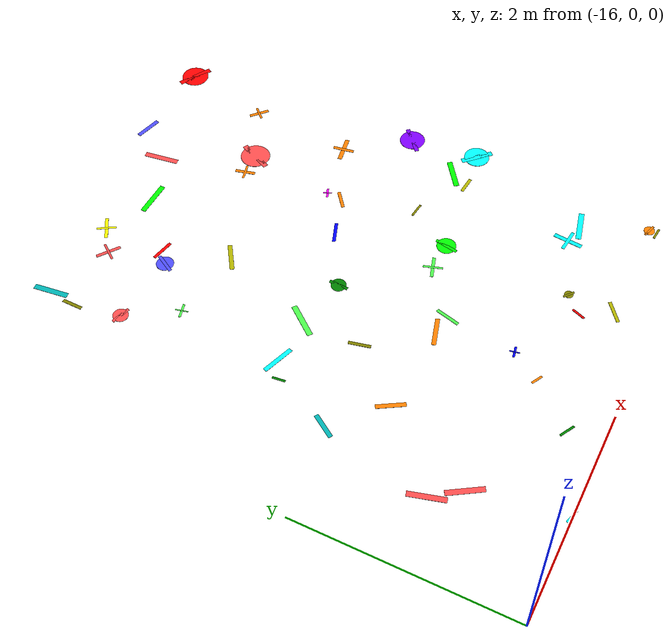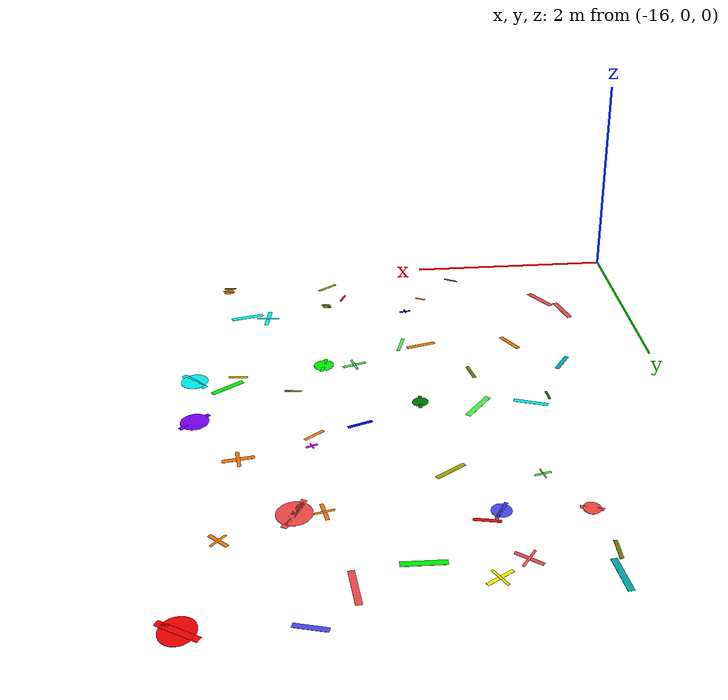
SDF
<sdf version="1.6">
 <world name="default">
  <model name="letter_P_54">
   <static>true</static>
   <pose>-15.02 0.01 0.010 0 0 2.868</pose>
   <link name="link">
    <visual name="visual">
     <geometry><box><size>0.13 0.02 0.002</size></box></geometry>
     <material>
      <ambient>0.0 1.0 1.0 1</ambient>
      <diffuse>0.0 1.0 1.0 1</diffuse>
      <specular>0.1 0.1 0.1 1</specular>
     </material>
    </visual>
   </link>
  </model>
  <model name="letter_K_55">
   <static>true</static>
   <pose>-15.18 0.84 0.009 0 0 2.133</pose>
   <link name="link">
    <visual name="visual">
     <geometry><box><size>0.33 0.05 0.002</size></box></geometry>
     <material>
      <ambient>1.0 0.3 0.3 1</ambient>
      <diffuse>1.0 0.3 0.3 1</diffuse>
      <specular>0.1 0.1 0.1 1</specular>
     </material>
    </visual>
   </link>
  </model>
  <model name="letter_Y_56">
   <static>true</static>
   <pose>-15.36 1.09 0.010 0 0 4.982</pose>
   <link name="link">
    <visual name="visual">
     <geometry><box><size>0.33 0.05 0.002</size></box></geometry>
     <material>
      <ambient>1.0 0.3 0.3 1</ambient>
      <diffuse>1.0 0.3 0.3 1</diffuse>
      <specular>0.1 0.1 0.1 1</specular>
     </material>
    </visual>
   </link>
  </model>
  <model name="letter_P_57">
   <static>true</static>
   <pose>-14.72 1.70 0.008 0 0 5.253</pose>
   <link name="link">
    <visual name="visual">
     <geometry><box><size>0.26 0.04 0.002</size></box></geometry>
     <material>
      <ambient>1.0 0.5 0.0 1</ambient>
      <diffuse>1.0 0.5 0.0 1</diffuse>
      <specular>0.1 0.1 0.1 1</specular>
     </material>
    </visual>
   </link>
  </model>
  <model name="letter_R_58">
   <static>true</static>
   <pose>-15.14 2.11 0.008 0 0 0.988</pose>
   <link name="link">
    <visual name="visual">
     <geometry><box><size>0.24 0.04 0.002</size></box></geometry>
     <material>
      <ambient>0.0 0.7 0.7 1</ambient>
      <diffuse>0.0 0.7 0.7 1</diffuse>
      <specular>0.1 0.1 0.1 1</specular>
     </material>
    </visual>
   </link>
  </model>
  <model name="letter_Z_59">
   <static>true</static>
   <pose>-14.73 2.75 0.011 0 0 2.807</pose>
   <link name="link">
    <visual name="visual">
     <geometry><box><size>0.30 0.04 0.002</size></box></geometry>
     <material>
      <ambient>0.0 1.0 1.0 1</ambient>
      <diffuse>0.0 1.0 1.0 1</diffuse>
      <specular>0.1 0.1 0.1 1</specular>
     </material>
    </visual>
   </link>
  </model>
  <model name="letter_X_60">
   <static>true</static>
   <pose>-14.90 2.65 0.011 0 0 1.676</pose>
   <link name="link">
    <visual name="visual">
     <geometry><box><size>0.12 0.02 0.002</size></box></geometry>
     <material>
      <ambient>0.0 0.5 0.0 1</ambient>
      <diffuse>0.0 0.5 0.0 1</diffuse>
      <specular>0.1 0.1 0.1 1</specular>
     </material>
    </visual>
   </link>
  </model>
  <model name="letter_O_61">
   <static>true</static>
   <pose>-14.92 4.20 0.012 0 0 2.859</pose>
   <link name="link">
    <visual name="visual">
     <geometry><box><size>0.18 0.03 0.002</size></box></geometry>
     <material>
      <ambient>1.0 0.3 0.3 1</ambient>
      <diffuse>1.0 0.3 0.3 1</diffuse>
      <specular>0.1 0.1 0.1 1</specular>
     </material>
    </visual>
    <visual name="visual2">
     <geometry><cylinder><radius>0.07</radius><length>0.002</length></cylinder></geometry>
     <material><ambient>1.0 0.3 0.3 1</ambient><diffuse>1.0 0.3 0.3 1</diffuse></material>
    </visual>
   </link>
  </model>
  <model name="letter_H_62">
   <static>true</static>
   <pose>-14.64 3.75 0.008 0 0 0.247</pose>
   <link name="link">
    <visual name="visual">
     <geometry><box><size>0.14 0.02 0.002</size></box></geometry>
     <material>
      <ambient>0.3 1.0 0.3 1</ambient>
      <diffuse>0.3 1.0 0.3 1</diffuse>
      <specular>0.1 0.1 0.1 1</specular>
     </material>
    </visual>
    <visual name="visual2">
     <pose>0 0 0.001 0 0 1.57</pose>
     <geometry><box><size>0.12 0.01 0.001</size></box></geometry>
     <material><ambient>0.3 1.0 0.3 1</ambient><diffuse>0.3 1.0 0.3 1</diffuse></material>
    </visual>
   </link>
  </model>
  <model name="letter_S_63">
   <static>true</static>
   <pose>-14.96 4.90 0.006 0 0 1.690</pose>
   <link name="link">
    <visual name="visual">
     <geometry><box><size>0.32 0.05 0.002</size></box></geometry>
     <material>
      <ambient>0.0 0.7 0.7 1</ambient>
      <diffuse>0.0 0.7 0.7 1</diffuse>
      <specular>0.1 0.1 0.1 1</specular>
     </material>
    </visual>
   </link>
  </model>
  <model name="letter_U_64">
   <static>true</static>
   <pose>-15.00 4.65 0.004 0 0 1.554</pose>
   <link name="link">
    <visual name="visual">
     <geometry><box><size>0.19 0.03 0.002</size></box></geometry>
     <material>
      <ambient>0.5 0.5 0.0 1</ambient>
      <diffuse>0.5 0.5 0.0 1</diffuse>
      <specular>0.1 0.1 0.1 1</specular>
     </material>
    </visual>
   </link>
  </model>
  <model name="letter_J_130">
   <static>true</static>
   <pose>-14.31 0.31 0.011 0 0 2.635</pose>
   <link name="link">
    <visual name="visual">
     <geometry><box><size>0.15 0.02 0.002</size></box></geometry>
     <material>
      <ambient>0.0 0.5 0.0 1</ambient>
      <diffuse>0.0 0.5 0.0 1</diffuse>
      <specular>0.1 0.1 0.1 1</specular>
     </material>
    </visual>
   </link>
  </model>
  <model name="letter_F_131">
   <static>true</static>
   <pose>-13.77 0.98 0.010 0 0 0.182</pose>
   <link name="link">
    <visual name="visual">
     <geometry><box><size>0.11 0.02 0.002</size></box></geometry>
     <material>
      <ambient>0.0 0.0 1.0 1</ambient>
      <diffuse>0.0 0.0 1.0 1</diffuse>
      <specular>0.1 0.1 0.1 1</specular>
     </material>
    </visual>
    <visual name="visual2">
     <pose>0 0 0.001 0 0 1.57</pose>
     <geometry><box><size>0.09 0.01 0.001</size></box></geometry>
     <material><ambient>0.0 0.0 1.0 1</ambient><diffuse>0.0 0.0 1.0 1</diffuse></material>
    </visual>
   </link>
  </model>
  <model name="letter_Y_132">
   <static>true</static>
   <pose>-13.95 0.71 0.007 0 0 2.653</pose>
   <link name="link">
    <visual name="visual">
     <geometry><box><size>0.11 0.02 0.002</size></box></geometry>
     <material>
      <ambient>1.0 0.5 0.0 1</ambient>
      <diffuse>1.0 0.5 0.0 1</diffuse>
      <specular>0.1 0.1 0.1 1</specular>
     </material>
    </visual>
   </link>
  </model>
  <model name="letter_S_133">
   <static>true</static>
   <pose>-13.87 1.67 0.006 0 0 0.287</pose>
   <link name="link">
    <visual name="visual">
     <geometry><box><size>0.28 0.04 0.002</size></box></geometry>
     <material>
      <ambient>1.0 0.5 0.0 1</ambient>
      <diffuse>1.0 0.5 0.0 1</diffuse>
      <specular>0.1 0.1 0.1 1</specular>
     </material>
    </visual>
   </link>
  </model>
  <model name="letter_Z_134">
   <static>true</static>
   <pose>-14.28 2.20 0.007 0 0 4.930</pose>
   <link name="link">
    <visual name="visual">
     <geometry><box><size>0.20 0.03 0.002</size></box></geometry>
     <material>
      <ambient>0.5 0.5 0.0 1</ambient>
      <diffuse>0.5 0.5 0.0 1</diffuse>
      <specular>0.1 0.1 0.1 1</specular>
     </material>
    </visual>
   </link>
  </model>
  <model name="letter_Z_135">
   <static>true</static>
   <pose>-13.68 1.64 0.006 0 0 1.307</pose>
   <link name="link">
    <visual name="visual">
     <geometry><box><size>0.23 0.03 0.002</size></box></geometry>
     <material>
      <ambient>0.3 1.0 0.3 1</ambient>
      <diffuse>0.3 1.0 0.3 1</diffuse>
      <specular>0.1 0.1 0.1 1</specular>
     </material>
    </visual>
   </link>
  </model>
  <model name="letter_W_136">
   <static>true</static>
   <pose>-14.27 2.76 0.004 0 0 4.040</pose>
   <link name="link">
    <visual name="visual">
     <geometry><box><size>0.34 0.05 0.002</size></box></geometry>
     <material>
      <ambient>0.3 1.0 0.3 1</ambient>
      <diffuse>0.3 1.0 0.3 1</diffuse>
      <specular>0.1 0.1 0.1 1</specular>
     </material>
    </visual>
   </link>
  </model>
  <model name="letter_C_137">
   <static>true</static>
   <pose>-13.78 2.65 0.004 0 0 1.509</pose>
   <link name="link">
    <visual name="visual">
     <geometry><box><size>0.18 0.03 0.002</size></box></geometry>
     <material>
      <ambient>0.0 0.5 0.0 1</ambient>
      <diffuse>0.0 0.5 0.0 1</diffuse>
      <specular>0.1 0.1 0.1 1</specular>
     </material>
    </visual>
    <visual name="visual2">
     <geometry><cylinder><radius>0.07</radius><length>0.002</length></cylinder></geometry>
     <material><ambient>0.0 0.5 0.0 1</ambient><diffuse>0.0 0.5 0.0 1</diffuse></material>
    </visual>
   </link>
  </model>
  <model name="letter_O_138">
   <static>true</static>
   <pose>-14.25 4.16 0.005 0 0 1.046</pose>
   <link name="link">
    <visual name="visual">
     <geometry><box><size>0.20 0.03 0.002</size></box></geometry>
     <material>
      <ambient>0.3 0.3 1.0 1</ambient>
      <diffuse>0.3 0.3 1.0 1</diffuse>
      <specular>0.1 0.1 0.1 1</specular>
     </material>
    </visual>
    <visual name="visual2">
     <geometry><cylinder><radius>0.08</radius><length>0.002</length></cylinder></geometry>
     <material><ambient>0.3 0.3 1.0 1</ambient><diffuse>0.3 0.3 1.0 1</diffuse></material>
    </visual>
   </link>
  </model>
  <model name="letter_V_139">
   <static>true</static>
   <pose>-13.93 3.66 0.012 0 0 3.728</pose>
   <link name="link">
    <visual name="visual">
     <geometry><box><size>0.28 0.04 0.002</size></box></geometry>
     <material>
      <ambient>0.7 0.7 0.0 1</ambient>
      <diffuse>0.7 0.7 0.0 1</diffuse>
      <specular>0.1 0.1 0.1 1</specular>
     </material>
    </visual>
   </link>
  </model>
  <model name="letter_Y_140">
   <static>true</static>
   <pose>-14.13 4.26 0.005 0 0 6.078</pose>
   <link name="link">
    <visual name="visual">
     <geometry><box><size>0.21 0.03 0.002</size></box></geometry>
     <material>
      <ambient>1.0 0.0 0.0 1</ambient>
      <diffuse>1.0 0.0 0.0 1</diffuse>
      <specular>0.1 0.1 0.1 1</specular>
     </material>
    </visual>
   </link>
  </model>
  <model name="letter_L_141">
   <static>true</static>
   <pose>-14.13 4.86 0.009 0 0 0.546</pose>
   <link name="link">
    <visual name="visual">
     <geometry><box><size>0.23 0.03 0.002</size></box></geometry>
     <material>
      <ambient>1.0 1.0 0.0 1</ambient>
      <diffuse>1.0 1.0 0.0 1</diffuse>
      <specular>0.1 0.1 0.1 1</specular>
     </material>
    </visual>
    <visual name="visual2">
     <pose>0 0 0.001 0 0 1.57</pose>
     <geometry><box><size>0.18 0.02 0.001</size></box></geometry>
     <material><ambient>1.0 1.0 0.0 1</ambient><diffuse>1.0 1.0 0.0 1</diffuse></material>
    </visual>
   </link>
  </model>
  <model name="letter_R_142">
   <static>true</static>
   <pose>-13.63 4.67 0.005 0 0 3.121</pose>
   <link name="link">
    <visual name="visual">
     <geometry><box><size>0.34 0.05 0.002</size></box></geometry>
     <material>
      <ambient>0.0 1.0 0.0 1</ambient>
      <diffuse>0.0 1.0 0.0 1</diffuse>
      <specular>0.1 0.1 0.1 1</specular>
     </material>
    </visual>
   </link>
  </model>
  <model name="letter_T_143">
   <static>true</static>
   <pose>-14.36 4.69 0.008 0 0 5.643</pose>
   <link name="link">
    <visual name="visual">
     <geometry><box><size>0.23 0.03 0.002</size></box></geometry>
     <material>
      <ambient>1.0 0.3 0.3 1</ambient>
      <diffuse>1.0 0.3 0.3 1</diffuse>
      <specular>0.1 0.1 0.1 1</specular>
     </material>
    </visual>
    <visual name="visual2">
     <pose>0 0 0.001 0 0 1.57</pose>
     <geometry><box><size>0.19 0.02 0.001</size></box></geometry>
     <material><ambient>1.0 0.3 0.3 1</ambient><diffuse>1.0 0.3 0.3 1</diffuse></material>
    </visual>
   </link>
  </model>
  <model name="letter_J_204">
   <static>true</static>
   <pose>-12.99 0.36 0.004 0 0 0.655</pose>
   <link name="link">
    <visual name="visual">
     <geometry><box><size>0.22 0.03 0.002</size></box></geometry>
     <material>
      <ambient>0.7 0.7 0.0 1</ambient>
      <diffuse>0.7 0.7 0.0 1</diffuse>
      <specular>0.1 0.1 0.1 1</specular>
     </material>
    </visual>
   </link>
  </model>
  <model name="letter_Q_205">
   <static>true</static>
   <pose>-12.98 0.78 0.004 0 0 5.604</pose>
   <link name="link">
    <visual name="visual">
     <geometry><box><size>0.11 0.02 0.002</size></box></geometry>
     <material>
      <ambient>0.5 0.5 0.0 1</ambient>
      <diffuse>0.5 0.5 0.0 1</diffuse>
      <specular>0.1 0.1 0.1 1</specular>
     </material>
    </visual>
    <visual name="visual2">
     <geometry><cylinder><radius>0.04</radius><length>0.002</length></cylinder></geometry>
     <material><ambient>0.5 0.5 0.0 1</ambient><diffuse>0.5 0.5 0.0 1</diffuse></material>
    </visual>
   </link>
  </model>
  <model name="letter_J_206">
   <static>true</static>
   <pose>-13.15 0.63 0.010 0 0 4.335</pose>
   <link name="link">
    <visual name="visual">
     <geometry><box><size>0.13 0.02 0.002</size></box></geometry>
     <material>
      <ambient>1.0 0.0 0.0 1</ambient>
      <diffuse>1.0 0.0 0.0 1</diffuse>
      <specular>0.1 0.1 0.1 1</specular>
     </material>
    </visual>
   </link>
  </model>
  <model name="letter_C_207">
   <static>true</static>
   <pose>-12.95 1.97 0.010 0 0 4.525</pose>
   <link name="link">
    <visual name="visual">
     <geometry><box><size>0.22 0.03 0.002</size></box></geometry>
     <material>
      <ambient>0.0 1.0 0.0 1</ambient>
      <diffuse>0.0 1.0 0.0 1</diffuse>
      <specular>0.1 0.1 0.1 1</specular>
     </material>
    </visual>
    <visual name="visual2">
     <geometry><cylinder><radius>0.09</radius><length>0.002</length></cylinder></geometry>
     <material><ambient>0.0 1.0 0.0 1</ambient><diffuse>0.0 1.0 0.0 1</diffuse></material>
    </visual>
   </link>
  </model>
  <model name="letter_N_208">
   <static>true</static>
   <pose>-12.68 2.39 0.013 0 0 6.169</pose>
   <link name="link">
    <visual name="visual">
     <geometry><box><size>0.15 0.02 0.002</size></box></geometry>
     <material>
      <ambient>0.5 0.5 0.0 1</ambient>
      <diffuse>0.5 0.5 0.0 1</diffuse>
      <specular>0.1 0.1 0.1 1</specular>
     </material>
    </visual>
   </link>
  </model>
  <model name="letter_H_209">
   <static>true</static>
   <pose>-13.23 1.98 0.008 0 0 0.309</pose>
   <link name="link">
    <visual name="visual">
     <geometry><box><size>0.22 0.03 0.002</size></box></geometry>
     <material>
      <ambient>0.3 1.0 0.3 1</ambient>
      <diffuse>0.3 1.0 0.3 1</diffuse>
      <specular>0.1 0.1 0.1 1</specular>
     </material>
    </visual>
    <visual name="visual2">
     <pose>0 0 0.001 0 0 1.57</pose>
     <geometry><box><size>0.18 0.02 0.001</size></box></geometry>
     <material><ambient>0.3 1.0 0.3 1</ambient><diffuse>0.3 1.0 0.3 1</diffuse></material>
    </visual>
   </link>
  </model>
  <model name="letter_R_210">
   <static>true</static>
   <pose>-13.25 2.95 0.008 0 0 0.356</pose>
   <link name="link">
    <visual name="visual">
     <geometry><box><size>0.22 0.03 0.002</size></box></geometry>
     <material>
      <ambient>0.0 0.0 1.0 1</ambient>
      <diffuse>0.0 0.0 1.0 1</diffuse>
      <specular>0.1 0.1 0.1 1</specular>
     </material>
    </visual>
   </link>
  </model>
  <model name="letter_F_211">
   <static>true</static>
   <pose>-12.85 3.23 0.012 0 0 0.402</pose>
   <link name="link">
    <visual name="visual">
     <geometry><box><size>0.10 0.02 0.002</size></box></geometry>
     <material>
      <ambient>1.0 0.0 1.0 1</ambient>
      <diffuse>1.0 0.0 1.0 1</diffuse>
      <specular>0.1 0.1 0.1 1</specular>
     </material>
    </visual>
    <visual name="visual2">
     <pose>0 0 0.001 0 0 1.57</pose>
     <geometry><box><size>0.08 0.01 0.001</size></box></geometry>
     <material><ambient>1.0 0.0 1.0 1</ambient><diffuse>1.0 0.0 1.0 1</diffuse></material>
    </visual>
   </link>
  </model>
  <model name="letter_B_212">
   <static>true</static>
   <pose>-12.87 3.08 0.011 0 0 3.804</pose>
   <link name="link">
    <visual name="visual">
     <geometry><box><size>0.19 0.03 0.002</size></box></geometry>
     <material>
      <ambient>1.0 0.5 0.0 1</ambient>
      <diffuse>1.0 0.5 0.0 1</diffuse>
      <specular>0.1 0.1 0.1 1</specular>
     </material>
    </visual>
   </link>
  </model>
  <model name="letter_I_213">
   <static>true</static>
   <pose>-12.95 4.06 0.005 0 0 1.815</pose>
   <link name="link">
    <visual name="visual">
     <geometry><box><size>0.19 0.03 0.002</size></box></geometry>
     <material>
      <ambient>1.0 0.5 0.0 1</ambient>
      <diffuse>1.0 0.5 0.0 1</diffuse>
      <specular>0.1 0.1 0.1 1</specular>
     </material>
    </visual>
    <visual name="visual2">
     <pose>0 0 0.001 0 0 1.57</pose>
     <geometry><box><size>0.16 0.02 0.001</size></box></geometry>
     <material><ambient>1.0 0.5 0.0 1</ambient><diffuse>1.0 0.5 0.0 1</diffuse></material>
    </visual>
   </link>
  </model>
  <model name="letter_O_214">
   <static>true</static>
   <pose>-12.73 4.07 0.012 0 0 4.271</pose>
   <link name="link">
    <visual name="visual">
     <geometry><box><size>0.34 0.05 0.002</size></box></geometry>
     <material>
      <ambient>1.0 0.3 0.3 1</ambient>
      <diffuse>1.0 0.3 0.3 1</diffuse>
      <specular>0.1 0.1 0.1 1</specular>
     </material>
    </visual>
    <visual name="visual2">
     <geometry><cylinder><radius>0.14</radius><length>0.002</length></cylinder></geometry>
     <material><ambient>1.0 0.3 0.3 1</ambient><diffuse>1.0 0.3 0.3 1</diffuse></material>
    </visual>
   </link>
  </model>
  <model name="letter_V_215">
   <static>true</static>
   <pose>-13.15 4.87 0.011 0 0 4.846</pose>
   <link name="link">
    <visual name="visual">
     <geometry><box><size>0.33 0.05 0.002</size></box></geometry>
     <material>
      <ambient>1.0 0.3 0.3 1</ambient>
      <diffuse>1.0 0.3 0.3 1</diffuse>
      <specular>0.1 0.1 0.1 1</specular>
     </material>
    </visual>
   </link>
  </model>
  <model name="letter_J_216">
   <static>true</static>
   <pose>-12.86 5.20 0.008 0 0 2.882</pose>
   <link name="link">
    <visual name="visual">
     <geometry><box><size>0.25 0.04 0.002</size></box></geometry>
     <material>
      <ambient>0.3 0.3 1.0 1</ambient>
      <diffuse>0.3 0.3 1.0 1</diffuse>
      <specular>0.1 0.1 0.1 1</specular>
     </material>
    </visual>
   </link>
  </model>
  <model name="letter_K_280">
   <static>true</static>
   <pose>-11.97 0.30 0.009 0 0 6.192</pose>
   <link name="link">
    <visual name="visual">
     <geometry><box><size>0.12 0.02 0.002</size></box></geometry>
     <material>
      <ambient>0.5 0.5 0.0 1</ambient>
      <diffuse>0.5 0.5 0.0 1</diffuse>
      <specular>0.1 0.1 0.1 1</specular>
     </material>
    </visual>
   </link>
  </model>
  <model name="letter_Q_281">
   <static>true</static>
   <pose>-11.96 0.37 0.005 0 0 5.978</pose>
   <link name="link">
    <visual name="visual">
     <geometry><box><size>0.13 0.02 0.002</size></box></geometry>
     <material>
      <ambient>1.0 0.5 0.0 1</ambient>
      <diffuse>1.0 0.5 0.0 1</diffuse>
      <specular>0.1 0.1 0.1 1</specular>
     </material>
    </visual>
    <visual name="visual2">
     <geometry><cylinder><radius>0.05</radius><length>0.002</length></cylinder></geometry>
     <material><ambient>1.0 0.5 0.0 1</ambient><diffuse>1.0 0.5 0.0 1</diffuse></material>
    </visual>
   </link>
  </model>
  <model name="letter_N_282">
   <static>true</static>
   <pose>-12.19 0.96 0.006 0 0 3.384</pose>
   <link name="link">
    <visual name="visual">
     <geometry><box><size>0.31 0.05 0.002</size></box></geometry>
     <material>
      <ambient>0.0 1.0 1.0 1</ambient>
      <diffuse>0.0 1.0 1.0 1</diffuse>
      <specular>0.1 0.1 0.1 1</specular>
     </material>
    </visual>
   </link>
  </model>
  <model name="letter_F_283">
   <static>true</static>
   <pose>-12.40 1.00 0.004 0 0 1.471</pose>
   <link name="link">
    <visual name="visual">
     <geometry><box><size>0.27 0.04 0.002</size></box></geometry>
     <material>
      <ambient>0.0 1.0 1.0 1</ambient>
      <diffuse>0.0 1.0 1.0 1</diffuse>
      <specular>0.1 0.1 0.1 1</specular>
     </material>
    </visual>
    <visual name="visual2">
     <pose>0 0 0.001 0 0 1.57</pose>
     <geometry><box><size>0.22 0.03 0.001</size></box></geometry>
     <material><ambient>0.0 1.0 1.0 1</ambient><diffuse>0.0 1.0 1.0 1</diffuse></material>
    </visual>
   </link>
  </model>
  <model name="letter_K_284">
   <static>true</static>
   <pose>-12.18 2.10 0.005 0 0 3.057</pose>
   <link name="link">
    <visual name="visual">
     <geometry><box><size>0.17 0.03 0.002</size></box></geometry>
     <material>
      <ambient>0.7 0.7 0.0 1</ambient>
      <diffuse>0.7 0.7 0.0 1</diffuse>
      <specular>0.1 0.1 0.1 1</specular>
     </material>
    </visual>
   </link>
  </model>
  <model name="letter_Q_285">
   <static>true</static>
   <pose>-11.80 2.15 0.009 0 0 2.346</pose>
   <link name="link">
    <visual name="visual">
     <geometry><box><size>0.31 0.05 0.002</size></box></geometry>
     <material>
      <ambient>0.0 1.0 1.0 1</ambient>
      <diffuse>0.0 1.0 1.0 1</diffuse>
      <specular>0.1 0.1 0.1 1</specular>
     </material>
    </visual>
    <visual name="visual2">
     <geometry><cylinder><radius>0.12</radius><length>0.002</length></cylinder></geometry>
     <material><ambient>0.0 1.0 1.0 1</ambient><diffuse>0.0 1.0 1.0 1</diffuse></material>
    </visual>
   </link>
  </model>
  <model name="letter_N_286">
   <static>true</static>
   <pose>-12.10 2.27 0.004 0 0 3.764</pose>
   <link name="link">
    <visual name="visual">
     <geometry><box><size>0.31 0.05 0.002</size></box></geometry>
     <material>
      <ambient>0.0 1.0 0.0 1</ambient>
      <diffuse>0.0 1.0 0.0 1</diffuse>
      <specular>0.1 0.1 0.1 1</specular>
     </material>
    </visual>
   </link>
  </model>
  <model name="letter_Q_287">
   <static>true</static>
   <pose>-11.87 2.80 0.012 0 0 0.729</pose>
   <link name="link">
    <visual name="visual">
     <geometry><box><size>0.30 0.04 0.002</size></box></geometry>
     <material>
      <ambient>0.5 0.0 1.0 1</ambient>
      <diffuse>0.5 0.0 1.0 1</diffuse>
      <specular>0.1 0.1 0.1 1</specular>
     </material>
    </visual>
    <visual name="visual2">
     <geometry><cylinder><radius>0.12</radius><length>0.002</length></cylinder></geometry>
     <material><ambient>0.5 0.0 1.0 1</ambient><diffuse>0.5 0.0 1.0 1</diffuse></material>
    </visual>
   </link>
  </model>
  <model name="letter_F_288">
   <static>true</static>
   <pose>-12.27 3.35 0.004 0 0 0.166</pose>
   <link name="link">
    <visual name="visual">
     <geometry><box><size>0.26 0.04 0.002</size></box></geometry>
     <material>
      <ambient>1.0 0.5 0.0 1</ambient>
      <diffuse>1.0 0.5 0.0 1</diffuse>
      <specular>0.1 0.1 0.1 1</specular>
     </material>
    </visual>
    <visual name="visual2">
     <pose>0 0 0.001 0 0 1.57</pose>
     <geometry><box><size>0.20 0.03 0.001</size></box></geometry>
     <material><ambient>1.0 0.5 0.0 1</ambient><diffuse>1.0 0.5 0.0 1</diffuse></material>
    </visual>
   </link>
  </model>
  <model name="letter_A_289">
   <static>true</static>
   <pose>-12.20 4.32 0.011 0 0 2.398</pose>
   <link name="link">
    <visual name="visual">
     <geometry><box><size>0.19 0.03 0.002</size></box></geometry>
     <material>
      <ambient>1.0 0.5 0.0 1</ambient>
      <diffuse>1.0 0.5 0.0 1</diffuse>
      <specular>0.1 0.1 0.1 1</specular>
     </material>
    </visual>
    <visual name="visual2">
     <pose>0 0 0.001 0 0 1.57</pose>
     <geometry><box><size>0.15 0.02 0.001</size></box></geometry>
     <material><ambient>1.0 0.5 0.0 1</ambient><diffuse>1.0 0.5 0.0 1</diffuse></material>
    </visual>
   </link>
  </model>
  <model name="letter_O_291">
   <static>true</static>
   <pose>-12.02 5.16 0.011 0 0 5.755</pose>
   <link name="link">
    <visual name="visual">
     <geometry><box><size>0.34 0.05 0.002</size></box></geometry>
     <material>
      <ambient>1.0 0.0 0.0 1</ambient>
      <diffuse>1.0 0.0 0.0 1</diffuse>
      <specular>0.1 0.1 0.1 1</specular>
     </material>
    </visual>
    <visual name="visual2">
     <geometry><cylinder><radius>0.13</radius><length>0.002</length></cylinder></geometry>
     <material><ambient>1.0 0.0 0.0 1</ambient><diffuse>1.0 0.0 0.0 1</diffuse></material>
    </visual>
   </link>
  </model>
 </world>
</sdf>
